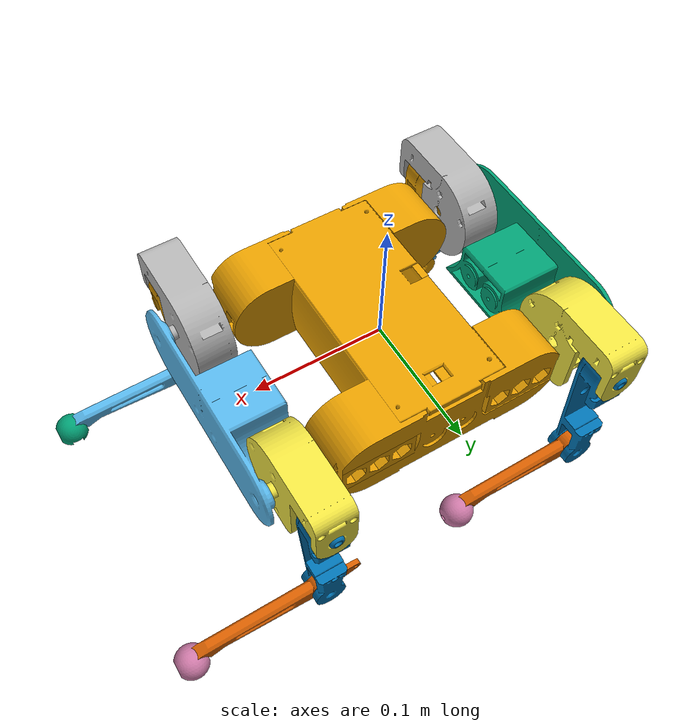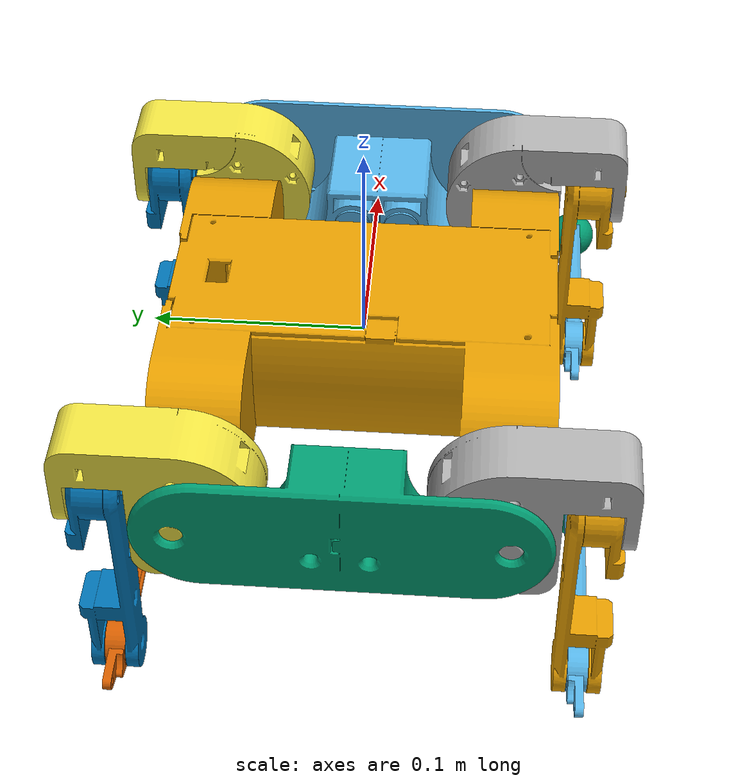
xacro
<?xml version="1.0" ?>
<robot name="quadruped" xmlns:xacro="http://www.ros.org/wiki/xacro">
    <link name="base_link">
        <visual>
            <origin xyz="0 0 0" rpy="0 0 0"/>
            <geometry>
                <mesh
                    filename="package://test_config/meshes/base.stl"
                    scale="0.001 0.001 0.001"
                />
            </geometry>
        </visual>
        <collision>
            <origin xyz="0 0 0" rpy="0 0 0"/>
            <geometry>
                <mesh
                    filename="package://test_config/meshes/base.stl"
                    scale="0.001 0.001 0.001"
                />
            </geometry>
        </collision>
    </link>
    <link name="f_bumper_link">
        <visual>
            <origin xyz="0 0 0" rpy="0 0 0"/>
            <geometry>
                <mesh
                    filename="package://test_config/meshes/bumper.stl"
                    scale="0.001 0.001 0.001"
                />
            </geometry>
        </visual>
        <collision>
            <origin xyz="0 0 0" rpy="0 0 0"/>
            <geometry>
                <mesh
                    filename="package://test_config/meshes/bumper.stl"
                    scale="0.001 0.001 0.001"
                />
            </geometry>
        </collision>
    </link>
    <link name="h_bumper_link">
        <visual>
            <origin xyz="0 0 0" rpy="0 0 3.1415"/>
            <geometry>
                <mesh
                    filename="package://test_config/meshes/bumper.stl"
                    scale="0.001 0.001 0.001"
                />
            </geometry>
        </visual>
        <collision>
            <origin xyz="0 0 0" rpy="0 0 3.1415"/>
            <geometry>
                <mesh
                    filename="package://test_config/meshes/bumper.stl"
                    scale="0.001 0.001 0.001"
                />
            </geometry>
        </collision>
    </link>
    <link name="lf_hip_link">
        <visual>
            <origin xyz="0 0 0" rpy="0 0 0"/>
            <geometry>
                <mesh
                    filename="package://test_config/meshes/hip.stl"
                    scale="0.001 0.001 0.001"
                />
            </geometry>
        </visual>
        <collision>
            <origin xyz="0 0 0" rpy="0 0 0"/>
            <geometry>
                <mesh
                    filename="package://test_config/meshes/hip.stl"
                    scale="0.001 0.001 0.001"
                />
            </geometry>
        </collision>
    </link>
    <link name="lf_upper_leg_link">
        <visual>
            <origin xyz="0 0 0" rpy="1.5707 0 3.1415"/>
            <geometry>
                <mesh
                    filename="package://test_config/meshes/upper-leg.stl"
                    scale="0.001 0.001 0.001"
                />
            </geometry>
        </visual>
        <collision>
            <origin xyz="0 0 0" rpy="1.5707 0 3.1415"/>
            <geometry>
                <mesh
                    filename="package://test_config/meshes/upper-leg.stl"
                    scale="0.001 0.001 0.001"
                />
            </geometry>
        </collision>
    </link>
    <link name="lf_lower_leg_link">
        <visual>
            <origin xyz="0 0 0" rpy="1.5707 0 0"/>
            <geometry>
                <mesh
                    filename="package://test_config/meshes/lower-leg.stl"
                    scale="0.001 0.001 0.001"
                />
            </geometry>
        </visual>
        <collision>
            <origin xyz="0 0 0" rpy="1.5707 0 0"/>
            <geometry>
                <mesh
                    filename="package://test_config/meshes/lower-leg.stl"
                    scale="0.001 0.001 0.001"
                />
            </geometry>
        </collision>
    </link>
    <link name="lf_foot_link">
        <visual>
            <origin xyz="0 0 0" rpy="1.5707 0 0"/>
            <geometry>
                <mesh
                    filename="package://test_config/meshes/foot.stl"
                    scale="0.001 0.001 0.001"
                />
            </geometry>
        </visual>
        <collision>
            <origin xyz="0 0 0" rpy="1.5707 0 0"/>
            <geometry>
                <mesh
                    filename="package://test_config/meshes/foot.stl"
                    scale="0.001 0.001 0.001"
                />
            </geometry>
        </collision>
    </link>
    <link name="rf_hip_link">
        <visual>
            <origin xyz="0 0 0" rpy="0 0 0"/>
            <geometry>
                <mesh
                    filename="package://test_config/meshes/hip.stl"
                    scale="0.001 -0.001 0.001"
                />
            </geometry>
        </visual>
        <collision>
            <origin xyz="0 0 0" rpy="0 0 0"/>
            <geometry>
                <mesh
                    filename="package://test_config/meshes/hip.stl"
                    scale="0.001 -0.001 0.001"
                />
            </geometry>
        </collision>
    </link>
    <link name="rf_upper_leg_link">
        <visual>
            <origin xyz="0 0 0" rpy="4.7123 0 3.1415"/>
            <geometry>
                <mesh
                    filename="package://test_config/meshes/upper-leg.stl"
                    scale="0.001 -0.001 0.001"
                />
            </geometry>
        </visual>
        <collision>
            <origin xyz="0 0 0" rpy="4.7123 0 3.1415"/>
            <geometry>
                <mesh
                    filename="package://test_config/meshes/upper-leg.stl"
                    scale="0.001 -0.001 0.001"
                />
            </geometry>
        </collision>
    </link>
    <link name="rf_lower_leg_link">
        <visual>
            <origin xyz="0 0 0" rpy="4.7123 0 0"/>
            <geometry>
                <mesh
                    filename="package://test_config/meshes/lower-leg.stl"
                    scale="0.001 -0.001 0.001"
                />
            </geometry>
        </visual>
        <collision>
            <origin xyz="0 0 0" rpy="4.7123 0 0"/>
            <geometry>
                <mesh
                    filename="package://test_config/meshes/lower-leg.stl"
                    scale="0.001 -0.001 0.001"
                />
            </geometry>
        </collision>
    </link>
    <link name="rf_foot_link">
        <visual>
            <origin xyz="0 0 0" rpy="4.7123 0 0"/>
            <geometry>
                <mesh
                    filename="package://test_config/meshes/foot.stl"
                    scale="0.001 -0.001 0.001"
                />
            </geometry>
        </visual>
        <collision>
            <origin xyz="0 0 0" rpy="4.7123 0 0"/>
            <geometry>
                <mesh
                    filename="package://test_config/meshes/foot.stl"
                    scale="0.001 -0.001 0.001"
                />
            </geometry>
        </collision>
    </link>
    <link name="lh_hip_link">
        <visual>
            <origin xyz="0 0 0" rpy="0 0 0"/>
            <geometry>
                <mesh
                    filename="package://test_config/meshes/hip.stl"
                    scale="-0.001 0.001 0.001"
                />
            </geometry>
        </visual>
        <collision>
            <origin xyz="0 0 0" rpy="0 0 0"/>
            <geometry>
                <mesh
                    filename="package://test_config/meshes/hip.stl"
                    scale="-0.001 0.001 0.001"
                />
            </geometry>
        </collision>
    </link>
    <link name="lh_upper_leg_link">
        <visual>
            <origin xyz="0 0 0" rpy="1.5707 0 3.1415"/>
            <geometry>
                <mesh
                    filename="package://test_config/meshes/upper-leg.stl"
                    scale="0.001 0.001 0.001"
                />
            </geometry>
        </visual>
        <collision>
            <origin xyz="0 0 0" rpy="1.5707 0 3.1415"/>
            <geometry>
                <mesh
                    filename="package://test_config/meshes/upper-leg.stl"
                    scale="0.001 0.001 0.001"
                />
            </geometry>
        </collision>
    </link>
    <link name="lh_lower_leg_link">
        <visual>
            <origin xyz="0 0 0" rpy="1.5707 0 0"/>
            <geometry>
                <mesh
                    filename="package://test_config/meshes/lower-leg.stl"
                    scale="0.001 0.001 0.001"
                />
            </geometry>
        </visual>
        <collision>
            <origin xyz="0 0 0" rpy="1.5707 0 0"/>
            <geometry>
                <mesh
                    filename="package://test_config/meshes/lower-leg.stl"
                    scale="0.001 0.001 0.001"
                />
            </geometry>
        </collision>
    </link>
    <link name="lh_foot_link">
        <visual>
            <origin xyz="0 0 0" rpy="1.5707 0 0"/>
            <geometry>
                <mesh
                    filename="package://test_config/meshes/foot.stl"
                    scale="0.001 0.001 0.001"
                />
            </geometry>
        </visual>
        <collision>
            <origin xyz="0 0 0" rpy="1.5707 0 0"/>
            <geometry>
                <mesh
                    filename="package://test_config/meshes/foot.stl"
                    scale="0.001 0.001 0.001"
                />
            </geometry>
        </collision>
    </link>
    <link name="rh_hip_link">
        <visual>
            <origin xyz="0 0 0" rpy="0 0 0"/>
            <geometry>
                <mesh
                    filename="package://test_config/meshes/hip.stl"
                    scale="-0.001 -0.001 0.001"
                />
            </geometry>
        </visual>
        <collision>
            <origin xyz="0 0 0" rpy="0 0 0"/>
            <geometry>
                <mesh
                    filename="package://test_config/meshes/hip.stl"
                    scale="-0.001 -0.001 0.001"
                />
            </geometry>
        </collision>
    </link>
    <link name="rh_upper_leg_link">
        <visual>
            <origin xyz="0 0 0" rpy="4.7123 0 3.1415"/>
            <geometry>
                <mesh
                    filename="package://test_config/meshes/upper-leg.stl"
                    scale="0.001 -0.001 0.001"
                />
            </geometry>
        </visual>
        <collision>
            <origin xyz="0 0 0" rpy="4.7123 0 3.1415"/>
            <geometry>
                <mesh
                    filename="package://test_config/meshes/upper-leg.stl"
                    scale="0.001 -0.001 0.001"
                />
            </geometry>
        </collision>
    </link>
    <link name="rh_lower_leg_link">
        <visual>
            <origin xyz="0 0 0" rpy="4.7123 0 0"/>
            <geometry>
                <mesh
                    filename="package://test_config/meshes/lower-leg.stl"
                    scale="0.001 -0.001 0.001"
                />
            </geometry>
        </visual>
        <collision>
            <origin xyz="0 0 0" rpy="4.7123 0 0"/>
            <geometry>
                <mesh
                    filename="package://test_config/meshes/lower-leg.stl"
                    scale="0.001 -0.001 0.001"
                />
            </geometry>
        </collision>
    </link>
    <link name="rh_foot_link">
        <visual>
            <origin xyz="0 0 0" rpy="4.7123 0 0"/>
            <geometry>
                <mesh
                    filename="package://test_config/meshes/foot.stl"
                    scale="0.001 -0.001 0.001"
                />
            </geometry>
        </visual>
        <collision>
            <origin xyz="0 0 0" rpy="4.7123 0 0"/>
            <geometry>
                <mesh
                    filename="package://test_config/meshes/foot.stl"
                    scale="0.001 -0.001 0.001"
                />
            </geometry>
        </collision>
    </link>
    <joint name="f_bumper_joint" type="fixed">
        <origin xyz="0.1203 0.0000 -0.0042" rpy="0 0 0"/>
        <parent link="base_link"/>
        <child link="f_bumper_link"/>
    </joint>
    <joint name="h_bumper_joint" type="fixed">
        <origin xyz="-0.1199 0.0000 -0.0042" rpy="0 0 0"/>
        <parent link="base_link"/>
        <child link="h_bumper_link"/>
    </joint>
    <joint name="lf_hip_joint" type="revolute">
        <origin xyz="0.1105 0.0716 0.0009" rpy="0 0 0"/>
        <parent link="base_link"/>
        <child link="lf_hip_link"/>
        <axis xyz="1 0 0"/>
        <limit lower="-0.8726" upper="0.8726" effort="25" velocity="1.5"/>
    </joint>
    <joint name="lf_upper_leg_joint" type="revolute">
        <origin xyz="0.0000 0.0355 0.0041" rpy="0 0 0"/>
        <parent link="lf_hip_link"/>
        <child link="lf_upper_leg_link"/>
        <axis xyz="0 1 0"/>
        <limit lower="-2.4434" upper="2.4434" effort="25" velocity="1.5"/>
    </joint>
    <joint name="lf_lower_leg_joint" type="revolute">
        <origin xyz="0.0002 0.0003 -0.1078" rpy="0 0 0"/>
        <parent link="lf_upper_leg_link"/>
        <child link="lf_lower_leg_link"/>
        <axis xyz="0 1 0"/>
        <limit lower="-2.0944" upper="-1.0472" effort="25" velocity="1.5"/>
    </joint>
    <joint name="lf_foot_joint" type="fixed">
        <origin xyz="-0.0093 -0.0003 -0.1060" rpy="0 0 0"/>
        <parent link="lf_lower_leg_link"/>
        <child link="lf_foot_link"/>
    </joint>
    <joint name="rf_hip_joint" type="revolute">
        <origin xyz="0.1105 -0.0716 0.0009" rpy="0 0 0"/>
        <parent link="base_link"/>
        <child link="rf_hip_link"/>
        <axis xyz="1 0 0"/>
        <limit lower="-0.8726" upper="0.8726" effort="25" velocity="1.5"/>
    </joint>
    <joint name="rf_upper_leg_joint" type="revolute">
        <origin xyz="0.0000 -0.0355 0.0041" rpy="0 0 0"/>
        <parent link="rf_hip_link"/>
        <child link="rf_upper_leg_link"/>
        <axis xyz="0 1 0"/>
        <limit lower="-2.4434" upper="2.4434" effort="25" velocity="1.5"/>
    </joint>
    <joint name="rf_lower_leg_joint" type="revolute">
        <origin xyz="0.0002 -0.0003 -0.1078" rpy="0 0 0"/>
        <parent link="rf_upper_leg_link"/>
        <child link="rf_lower_leg_link"/>
        <axis xyz="0 1 0"/>
        <limit lower="-2.0944" upper="-1.0472" effort="25" velocity="1.5"/>
    </joint>
    <joint name="rf_foot_joint" type="fixed">
        <origin xyz="-0.0093 -0.0003 -0.1060" rpy="0 0 0"/>
        <parent link="rf_lower_leg_link"/>
        <child link="rf_foot_link"/>
    </joint>
    <joint name="lh_hip_joint" type="revolute">
     <origin xyz="-0.1131 0.0716 0.0009" rpy="0 0 0"/>
        <parent link="base_link"/>
        <child link="lh_hip_link"/>
        <axis xyz="1 0 0"/>
        <limit lower="-0.8726" upper="0.8726" effort="25" velocity="1.5"/>
    </joint>
    <joint name="lh_upper_leg_joint" type="revolute">
       <origin xyz="0.0000 0.0355 0.0041" rpy="0 0 0"/>
        <parent link="lh_hip_link"/>
        <child link="lh_upper_leg_link"/>
        <axis xyz="0 1 0"/>
        <limit lower="-2.4434" upper="2.4434" effort="25" velocity="1.5"/>
    </joint>
    <joint name="lh_lower_leg_joint" type="revolute">
       <origin xyz="0.0002 0.0003 -0.1078" rpy="0 0 0"/>
        <parent link="lh_upper_leg_link"/>
        <child link="lh_lower_leg_link"/>
        <axis xyz="0 1 0"/>
        <limit lower="-2.0944" upper="-1.0472" effort="25" velocity="1.5"/>
    </joint>
    <joint name="lh_foot_joint" type="fixed">
        <origin xyz="-0.0093 -0.0003 -0.1060" rpy="0 0 0"/>
        <parent link="lh_lower_leg_link"/>
        <child link="lh_foot_link"/>
    </joint>
    <joint name="rh_hip_joint" type="revolute">
      <origin xyz="-0.1131 -0.0716 0.0009" rpy="0 0 0"/>
        <parent link="base_link"/>
        <child link="rh_hip_link"/>
        <axis xyz="1 0 0"/>
        <limit lower="-0.8726" upper="0.8726" effort="25" velocity="1.5"/>
    </joint>
    <joint name="rh_upper_leg_joint" type="revolute">
        <origin xyz="0.0000 -0.0355 0.0041" rpy="0 0 0"/>
        <parent link="rh_hip_link"/>
        <child link="rh_upper_leg_link"/>
        <axis xyz="0 1 0"/>
        <limit lower="-2.4434" upper="2.4434" effort="25" velocity="1.5"/>
    </joint>
    <joint name="rh_lower_leg_joint" type="revolute">
        <origin xyz="0.0002 -0.0003 -0.1078" rpy="0 0 0"/>
        <parent link="rh_upper_leg_link"/>
        <child link="rh_lower_leg_link"/>
        <axis xyz="0 1 0"/>
        <limit lower="-2.0944" upper="-1.0472" effort="25" velocity="1.5"/>
    </joint>
    <joint name="rh_foot_joint" type="fixed">
        <origin xyz="-0.0093 -0.0003 -0.1060" rpy="0 0 0"/>
        <parent link="rh_lower_leg_link"/>
        <child link="rh_foot_link"/>
    </joint>
</robot>
